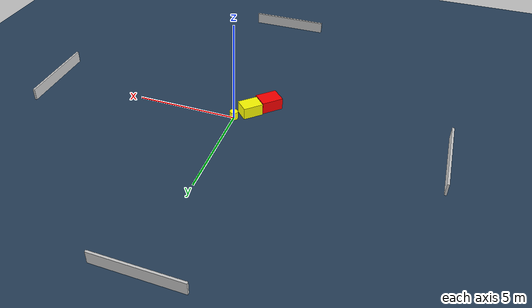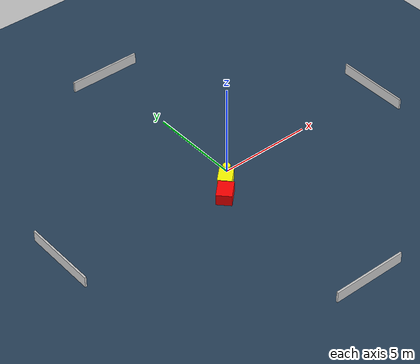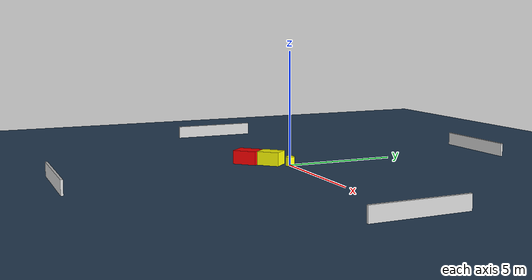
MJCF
<?xml version="1.0" ?>
<mujoco model="generated_environment">
  <option timestep="0.01" integrator="RK4" cone="elliptic"/>
  <default>
    <geom density="1"/>
  </default>
  <asset>
    <texture builtin="gradient" height="3072" name="skybox" rgb1="0.3 0.5 0.7" rgb2="0 0 0" type="skybox" width="512"/>
    <texture builtin="checker" height="300" name="groundplane" rgb1="0.2 0.3 0.4" rgb2="0.1 0.2 0.3" type="2d" width="300"/>
    <material name="groundplane" reflectance="0.2" texrepeat="5 5" texture="groundplane"/>
  </asset>
  <worldbody>
    <light dir="0 0 -1" directional="true" pos="0 0 1.5"/>
    <geom condim="3" friction="0.5 0.005 0.001" material="groundplane" name="floor" pos="0 0 0" size="0 0 0.05" type="plane"/>
    <body name="walls">
      <geom name="wall_1" condim="4" pos="-10.0 0.0 0.3" rgba="0.800000011920929 0.800000011920929 0.800000011920929 1.0" size="0.05 2.0 0.3" type="box"/>
      <geom name="wall_2" condim="4" pos="10.0 0.0 0.3" rgba="0.800000011920929 0.800000011920929 0.800000011920929 1.0" size="0.05 2.0 0.3" type="box"/>
      <geom name="wall_3" condim="4" pos="0.0 -10.0 0.3" rgba="0.800000011920929 0.800000011920929 0.800000011920929 1.0" size="2.0 0.05 0.3" type="box"/>
      <geom name="wall_4" condim="4" pos="0.0 10.0 0.3" rgba="0.800000011920929 0.800000011920929 0.800000011920929 1.0" size="2.0 0.05 0.3" type="box"/>
    </body>
    <body name="robot">
      <joint name="joint_x" type="slide" pos="0 0 0" axis="1 0 0"/>
      <joint name="joint_y" type="slide" pos="0 0 0" axis="0 1 0"/>
      <geom name="robot" type="cylinder" pos="0.0 0.0 0.2" size="0.2 0.2 0.0" mass="5.0" friction="1.0 0.005 0.0001" condim="4" rgba="1.0 1.0 0.0 1.0"/>
    </body>
    <body name="obstacle_1_movable">
      <geom name="obstacle_1_movable" condim="4" pos="-0.6165246696955702 -0.653748259886348 0.3" euler="0 0 133.44084179558712" friction="0.0 0.005 0.001" rgba="1.0 1.0 0.0 1.0" size="0.3669246311137687 0.4993947663182727 0.3" type="box" mass="0.1"/>
      <joint type="free"/>
    </body>
    <body name="obstacle_2_static">
      <geom name="obstacle_2_static" condim="4" pos="-1.3281965737214319 -1.4546402861132741 0.3" euler="0 0 43.806546572820054" friction="0.0 0.005 0.001" rgba="1.0 0.0 0.0 1.0" size="0.5387999237169825 0.4032055536172013 0.3" type="box"/>
    </body>
  </worldbody>
  <actuator>
    <motor name="actuator_x" joint="joint_x" gear="1" ctrlrange="-1 1"/>
    <motor name="actuator_y" joint="joint_y" gear="1" ctrlrange="-1 1"/>
  </actuator>
</mujoco>
